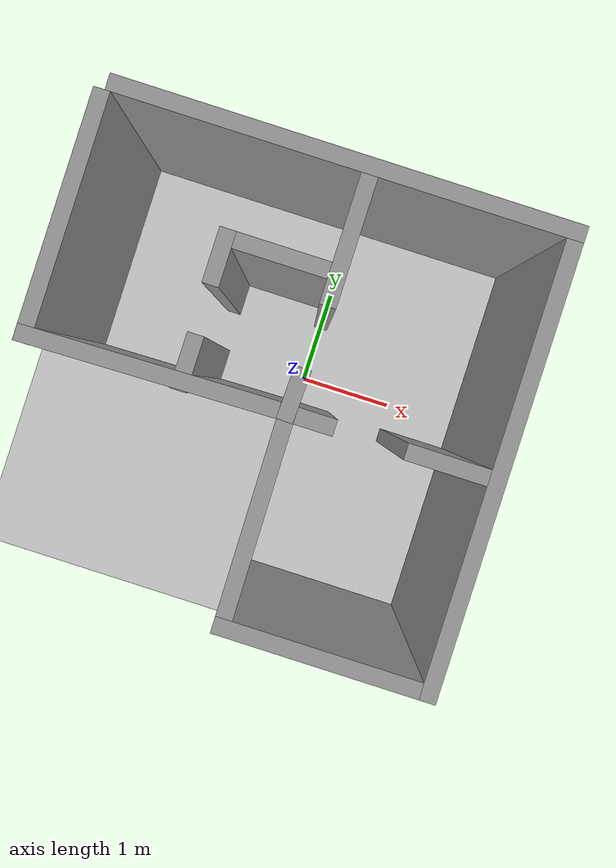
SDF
<sdf version="1.6">
 <world name="default">
  <light name="sun" type="directional">
   <pose>0 0 10 0 -0 0</pose>
   <diffuse>0.8 0.8 0.8 1</diffuse>
   <specular>0.1 0.1 0.1 1</specular>
   <attenuation>
    <range>1000</range>
    <constant>0.9</constant>
    <linear>0.01</linear>
    <quadratic>0.001</quadratic>
   </attenuation>
   <direction>-0.5 0.5 -1</direction>
  </light>
  <model name="ground_plane">
   <static>1</static>
   <link name="link">
    <collision name="collision">
     <geometry><plane><normal>0 0 1</normal><size>100 100</size></plane></geometry>
     <surface><friction><ode><mu>100</mu><mu2>50</mu2></ode></friction></surface>
    </collision>
    <visual name="visual">
     <cast_shadows>0</cast_shadows>
     <geometry><plane><normal>0 0 1</normal><size>100 100</size></plane></geometry>
     <material>
      <script><uri>file://media/materials/scripts/gazebo.material</uri><name>Gazebo/Grey</name></script>
     </material>
    </visual>
   </link>
  </model>
  <gravity>0 0 -9.8</gravity>
  <magnetic_field>6e-06 2.3e-05 -4.2e-05</magnetic_field>
  <atmosphere type="adiabatic"/>
  <physics name="default_physics" default="0" type="ode">
   <max_step_size>0.001</max_step_size>
   <real_time_factor>1</real_time_factor>
   <real_time_update_rate>1000</real_time_update_rate>
  </physics>
  <scene><ambient>0.4 0.4 0.4 1</ambient><background>0.7 0.7 0.7 1</background><shadows>1</shadows></scene>
  <spherical_coordinates>
   <surface_model>EARTH_WGS84</surface_model>
   <latitude_deg>0</latitude_deg>
   <longitude_deg>0</longitude_deg>
   <elevation>0</elevation>
   <heading_deg>0</heading_deg>
  </spherical_coordinates>
  <model name="Untitled">
   <pose>-0.278234 -0.197452 0 0 -0 0</pose>
   <link name="Wall_0">
    <collision name="Wall_0_Collision">
     <geometry><box><size>4.25 0.15 2.5</size></box></geometry>
     <pose>0 0 1.25 0 -0 0</pose>
    </collision>
    <visual name="Wall_0_Visual">
     <pose>0 0 1.25 0 -0 0</pose>
     <geometry><box><size>4.25 0.15 2.5</size></box></geometry>
     <material>
      <script><uri>file://media/materials/scripts/gazebo.material</uri><name>Gazebo/Grey</name></script>
      <ambient>1 1 1 1</ambient>
     </material>
    </visual>
    <pose>0.050734 2.05045 0 0 -0 0</pose>
   </link>
   <link name="Wall_1">
    <collision name="Wall_1_Collision">
     <geometry><box><size>4.25 0.15 2.5</size></box></geometry>
     <pose>0 0 1.25 0 -0 0</pose>
    </collision>
    <visual name="Wall_1_Visual">
     <pose>0 0 1.25 0 -0 0</pose>
     <geometry><box><size>4.25 0.15 2.5</size></box></geometry>
     <material>
      <script><uri>file://media/materials/scripts/gazebo.material</uri><name>Gazebo/Grey</name></script>
      <ambient>1 1 1 1</ambient>
     </material>
    </visual>
    <pose>2.10073 0.000452 0 0 0 -1.5708</pose>
   </link>
   <link name="Wall_15">
    <collision name="Wall_15_Collision">
     <geometry><box><size>0.477202 0.15 2.5</size></box></geometry>
     <pose>0 0 1.25 0 -0 0</pose>
    </collision>
    <visual name="Wall_15_Visual">
     <pose>0 0 1.25 0 -0 0</pose>
     <geometry><box><size>0.477202 0.15 2.5</size></box></geometry>
     <material>
      <script><uri>file://media/materials/scripts/gazebo.material</uri><name>Gazebo/Grey</name></script>
      <ambient>1 1 1 1</ambient>
     </material>
    </visual>
    <pose>0.233484 0.009952 0 0 -0 1.53564</pose>
   </link>
   <link name="Wall_17">
    <collision name="Wall_17_Collision">
     <geometry><box><size>0.5 0.15 2.5</size></box></geometry>
     <pose>0 0 1.25 0 -0 0</pose>
    </collision>
    <visual name="Wall_17_Visual">
     <pose>0 0 1.25 0 -0 0</pose>
     <geometry><box><size>0.5 0.15 2.5</size></box></geometry>
     <material>
      <script><uri>file://media/materials/scripts/gazebo.material</uri><name>Gazebo/Grey</name></script>
      <ambient>1 1 1 1</ambient>
     </material>
    </visual>
    <pose>-0.722766 0.925952 0 0 -0 1.5708</pose>
   </link>
   <link name="Wall_18">
    <collision name="Wall_18_Collision">
     <geometry><box><size>1 0.15 2.5</size></box></geometry>
     <pose>0 0 1.25 0 -0 0</pose>
    </collision>
    <visual name="Wall_18_Visual">
     <pose>0 0 1.25 0 -0 0</pose>
     <geometry><box><size>1 0.15 2.5</size></box></geometry>
     <material>
      <script><uri>file://media/materials/scripts/gazebo.material</uri><name>Gazebo/Grey</name></script>
      <ambient>1 1 1 1</ambient>
     </material>
    </visual>
    <pose>-0.297766 1.10095 0 0 -0 0</pose>
   </link>
   <link name="Wall_2">
    <collision name="Wall_2_Collision">
     <geometry><box><size>2 0.15 2.5</size></box></geometry>
     <pose>0 0 1.25 0 -0 0</pose>
    </collision>
    <visual name="Wall_2_Visual">
     <pose>0 0 1.25 0 -0 0</pose>
     <geometry><box><size>2 0.15 2.5</size></box></geometry>
     <material>
      <script><uri>file://media/materials/scripts/gazebo.material</uri><name>Gazebo/Grey</name></script>
      <ambient>1 1 1 1</ambient>
     </material>
    </visual>
    <pose>1.17573 -2.04955 0 0 -0 3.14159</pose>
   </link>
   <link name="Wall_20">
    <collision name="Wall_20_Collision">
     <geometry><box><size>1.25 0.15 2.5</size></box></geometry>
     <pose>0 0 1.25 0 -0 0</pose>
    </collision>
    <visual name="Wall_20_Visual">
     <pose>0 0 1.25 0 -0 0</pose>
     <geometry><box><size>1.25 0.15 2.5</size></box></geometry>
     <material>
      <script><uri>file://media/materials/scripts/gazebo.material</uri><name>Gazebo/Grey</name></script>
      <ambient>1 1 1 1</ambient>
     </material>
    </visual>
    <pose>0.277734 1.43145 0 0 0 -1.5708</pose>
   </link>
   <link name="Wall_26">
    <collision name="Wall_26_Collision">
     <geometry><box><size>0.75 0.15 2.5</size></box></geometry>
     <pose>0 0 1.25 0 -0 0</pose>
    </collision>
    <visual name="Wall_26_Visual">
     <pose>0 0 1.25 0 -0 0</pose>
     <geometry><box><size>0.75 0.15 2.5</size></box></geometry>
     <material>
      <script><uri>file://media/materials/scripts/gazebo.material</uri><name>Gazebo/Grey</name></script>
      <ambient>1 1 1 1</ambient>
     </material>
    </visual>
    <pose>1.65873 -0.157548 0 0 -0 0</pose>
   </link>
   <link name="Wall_3">
    <collision name="Wall_3_Collision">
     <geometry><box><size>2.04614 0.15 2.5</size></box></geometry>
     <pose>0 0 1.25 0 -0 0</pose>
    </collision>
    <visual name="Wall_3_Visual">
     <pose>0 0 1.25 0 -0 0</pose>
     <geometry><box><size>2.04614 0.15 2.5</size></box></geometry>
     <material>
      <script><uri>file://media/materials/scripts/gazebo.material</uri><name>Gazebo/Grey</name></script>
      <ambient>1 1 1 1</ambient>
     </material>
    </visual>
    <pose>0.239234 -1.10155 0 0 -0 1.58293</pose>
   </link>
   <link name="Wall_30">
    <collision name="Wall_30_Collision">
     <geometry><box><size>0.5 0.15 2.5</size></box></geometry>
     <pose>0 0 1.25 0 -0 0</pose>
    </collision>
    <visual name="Wall_30_Visual">
     <pose>0 0 1.25 0 -0 0</pose>
     <geometry><box><size>0.5 0.15 2.5</size></box></geometry>
     <material>
      <script><uri>file://media/materials/scripts/gazebo.material</uri><name>Gazebo/Grey</name></script>
      <ambient>1 1 1 1</ambient>
     </material>
    </visual>
    <pose>0.402734 -0.153548 0 0 -0 0</pose>
   </link>
   <link name="Wall_4">
    <collision name="Wall_4_Collision">
     <geometry><box><size>2.47745 0.15 2.5</size></box></geometry>
     <pose>0 0 1.25 0 -0 0</pose>
    </collision>
    <visual name="Wall_4_Visual">
     <pose>0 0 1.25 0 -0 0</pose>
     <geometry><box><size>2.47745 0.15 2.5</size></box></geometry>
     <material>
      <script><uri>file://media/materials/scripts/gazebo.material</uri><name>Gazebo/Grey</name></script>
      <ambient>1 1 1 1</ambient>
     </material>
    </visual>
    <pose>-0.935766 -0.176548 0 0 0 -3.12183</pose>
   </link>
   <link name="Wall_5">
    <collision name="Wall_5_Collision">
     <geometry><box><size>2.25 0.15 2.5</size></box></geometry>
     <pose>0 0 1.25 0 -0 0</pose>
    </collision>
    <visual name="Wall_5_Visual">
     <pose>0 0 1.25 0 -0 0</pose>
     <geometry><box><size>2.25 0.15 2.5</size></box></geometry>
     <material>
      <script><uri>file://media/materials/scripts/gazebo.material</uri><name>Gazebo/Grey</name></script>
      <ambient>1 1 1 1</ambient>
     </material>
    </visual>
    <pose>-2.09927 0.850452 0 0 -0 1.5708</pose>
   </link>
   <link name="Wall_7">
    <collision name="Wall_7_Collision">
     <geometry><box><size>0.5 0.15 2.5</size></box></geometry>
     <pose>0 0 1.25 0 -0 0</pose>
    </collision>
    <visual name="Wall_7_Visual">
     <pose>0 0 1.25 0 -0 0</pose>
     <geometry><box><size>0.5 0.15 2.5</size></box></geometry>
     <material>
      <script><uri>file://media/materials/scripts/gazebo.material</uri><name>Gazebo/Grey</name></script>
      <ambient>1 1 1 1</ambient>
     </material>
    </visual>
    <pose>-0.711266 -0.005548 0 0 -0 1.5708</pose>
   </link>
   <static>1</static>
  </model>
  <plugin filename="libcollision_map_creator.so" name="collision_map_creator"/>
 </world>
</sdf>
